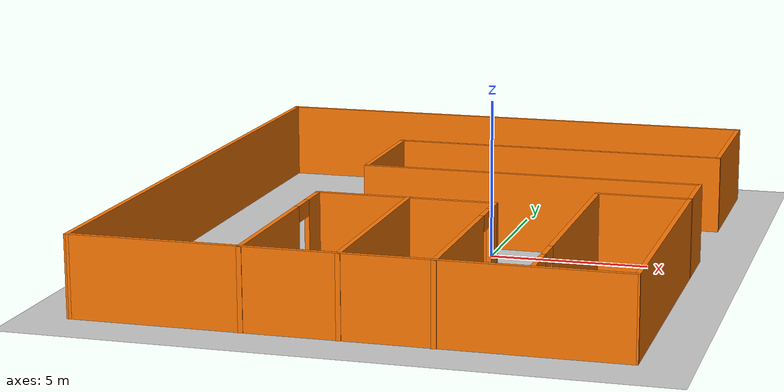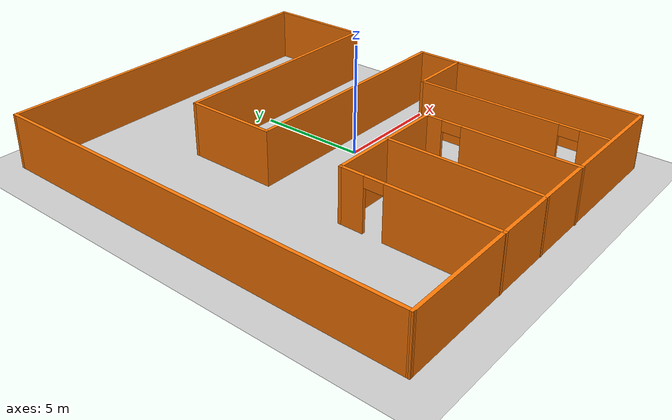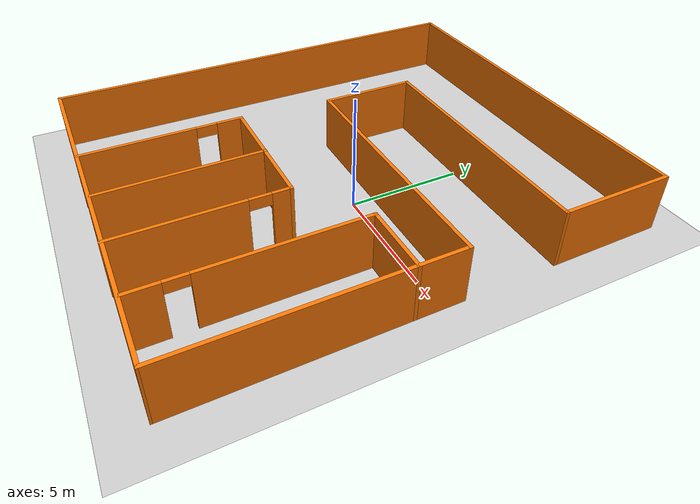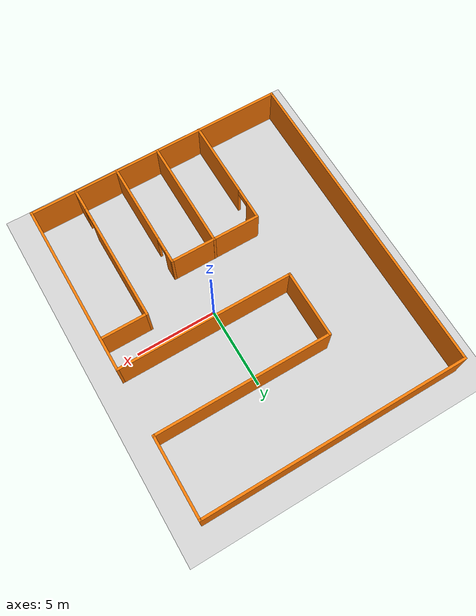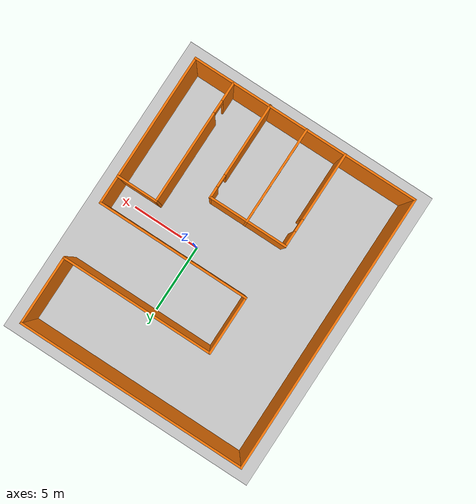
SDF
<sdf version="1.7">
 <world name="default">
  <light name="sun" type="directional">
   <pose>0 0 10 0 -0 0</pose>
   <diffuse>0.8 0.8 0.8 1</diffuse>
   <specular>0.2 0.2 0.2 1</specular>
   <attenuation>
    <range>1000</range>
    <constant>0.9</constant>
    <linear>0.01</linear>
    <quadratic>0.001</quadratic>
   </attenuation>
   <direction>-0.5 0.1 -0.9</direction>
   <spot><inner_angle>0</inner_angle><outer_angle>0</outer_angle><falloff>0</falloff></spot>
  </light>
  <model name="ground_plane">
   <static>1</static>
   <link name="link">
    <collision name="collision">
     <geometry><plane><normal>0 0 1</normal><size>100 100</size></plane></geometry>
     <surface><friction><ode><mu>100</mu><mu2>50</mu2></ode></friction></surface>
    </collision>
    <visual name="visual">
     <cast_shadows>0</cast_shadows>
     <geometry><plane><normal>0 0 1</normal><size>100 100</size></plane></geometry>
     <material>
      <script><uri>file://media/materials/scripts/gazebo.material</uri><name>Gazebo/Grey</name></script>
     </material>
    </visual>
   </link>
  </model>
  <gravity>0 0 -9.8</gravity>
  <magnetic_field>6e-06 2.3e-05 -4.2e-05</magnetic_field>
  <atmosphere type="adiabatic"/>
  <physics type="ode">
   <max_step_size>0.001</max_step_size>
   <real_time_factor>1</real_time_factor>
   <real_time_update_rate>1000</real_time_update_rate>
  </physics>
  <scene><ambient>0.4 0.4 0.4 1</ambient><background>0.7 0.7 0.7 1</background><shadows>1</shadows></scene>
  <audio><device>default</device></audio>
  <spherical_coordinates>
   <surface_model>EARTH_WGS84</surface_model>
   <latitude_deg>0</latitude_deg>
   <longitude_deg>0</longitude_deg>
   <elevation>0</elevation>
   <heading_deg>0</heading_deg>
  </spherical_coordinates>
  <model name="btu">
   <pose>-1.75357 0.012326 0 0 -0 0</pose>
   <link name="Wall_0">
    <collision name="Wall_0_Collision">
     <geometry><box><size>20 0.15 2.5</size></box></geometry>
     <pose>0 0 1.25 0 -0 0</pose>
    </collision>
    <visual name="Wall_0_Visual">
     <pose>0 0 1.25 0 -0 0</pose>
     <geometry><box><size>20 0.15 2.5</size></box></geometry>
     <material>
      <script><uri>file://media/materials/scripts/gazebo.material</uri><name>Gazebo/Grey</name></script>
      <ambient>0.996078 0.47451 0.0196078 1</ambient>
     </material>
     <meta><layer>0</layer></meta>
    </visual>
    <pose>-8.17508 0.000617 0 0 -0 -1.5708</pose>
   </link>
   <link name="Wall_11">
    <pose>2.61895 -6.50062 0 0 -0 1.5708</pose>
    <visual name="Wall_11_Visual_0">
     <pose>-0.874038 0 1.25 0 -0 0</pose>
     <geometry><box><size>5.25192 0.15 2.5</size></box></geometry>
     <material>
      <script><uri>file://media/materials/scripts/gazebo.material</uri><name>Gazebo/Grey</name></script>
      <ambient>0.996078 0.47451 0.0196078 1</ambient>
     </material>
     <meta><layer>0</layer></meta>
    </visual>
    <collision name="Wall_11_Collision_0">
     <geometry><box><size>5.25192 0.15 2.5</size></box></geometry>
     <pose>-0.874038 0 1.25 0 -0 0</pose>
    </collision>
    <visual name="Wall_11_Visual_1">
     <pose>3.07596 0 1.25 0 -0 0</pose>
     <geometry><box><size>0.848076 0.15 2.5</size></box></geometry>
     <material>
      <script><uri>file://media/materials/scripts/gazebo.material</uri><name>Gazebo/Grey</name></script>
      <ambient>0.996078 0.47451 0.0196078 1</ambient>
     </material>
     <meta><layer>0</layer></meta>
    </visual>
    <collision name="Wall_11_Collision_1">
     <geometry><box><size>0.848076 0.15 2.5</size></box></geometry>
     <pose>3.07596 0 1.25 0 -0 0</pose>
    </collision>
    <visual name="Wall_11_Visual_2">
     <pose>2.20192 0 2.25 0 -0 0</pose>
     <geometry><box><size>0.9 0.15 0.5</size></box></geometry>
     <material>
      <script><uri>file://media/materials/scripts/gazebo.material</uri><name>Gazebo/Grey</name></script>
      <ambient>0.996078 0.47451 0.0196078 1</ambient>
     </material>
     <meta><layer>0</layer></meta>
    </visual>
    <collision name="Wall_11_Collision_2">
     <geometry><box><size>0.9 0.15 0.5</size></box></geometry>
     <pose>2.20192 0 2.25 0 -0 0</pose>
    </collision>
   </link>
   <link name="Wall_12">
    <collision name="Wall_12_Collision">
     <geometry><box><size>5.75 0.15 2.5</size></box></geometry>
     <pose>0 0 1.25 0 -0 0</pose>
    </collision>
    <visual name="Wall_12_Visual">
     <pose>0 0 1.25 0 -0 0</pose>
     <geometry><box><size>5.75 0.15 2.5</size></box></geometry>
     <material>
      <script><uri>file://media/materials/scripts/gazebo.material</uri><name>Gazebo/Grey</name></script>
      <ambient>0.996078 0.47451 0.0196078 1</ambient>
     </material>
     <meta><layer>0</layer></meta>
    </visual>
    <pose>-0.181051 -3.07562 0 0 -0 3.14159</pose>
   </link>
   <link name="Wall_13">
    <pose>-2.98105 -6.50062 0 0 -0 -1.5708</pose>
    <visual name="Wall_13_Visual_0">
     <pose>-2.91353 0 1.25 0 -0 0</pose>
     <geometry><box><size>1.17293 0.15 2.5</size></box></geometry>
     <material>
      <script><uri>file://media/materials/scripts/gazebo.material</uri><name>Gazebo/Grey</name></script>
      <ambient>0.996078 0.47451 0.0196078 1</ambient>
     </material>
     <meta><layer>0</layer></meta>
    </visual>
    <collision name="Wall_13_Collision_0">
     <geometry><box><size>1.17293 0.15 2.5</size></box></geometry>
     <pose>-2.91353 0 1.25 0 -0 0</pose>
    </collision>
    <visual name="Wall_13_Visual_1">
     <pose>1.03647 0 1.25 0 -0 0</pose>
     <geometry><box><size>4.92707 0.15 2.5</size></box></geometry>
     <material>
      <script><uri>file://media/materials/scripts/gazebo.material</uri><name>Gazebo/Grey</name></script>
      <ambient>0.996078 0.47451 0.0196078 1</ambient>
     </material>
     <meta><layer>0</layer></meta>
    </visual>
    <collision name="Wall_13_Collision_1">
     <geometry><box><size>4.92707 0.15 2.5</size></box></geometry>
     <pose>1.03647 0 1.25 0 -0 0</pose>
    </collision>
    <visual name="Wall_13_Visual_2">
     <pose>-1.87707 0 2.25 0 -0 0</pose>
     <geometry><box><size>0.9 0.15 0.5</size></box></geometry>
     <material>
      <script><uri>file://media/materials/scripts/gazebo.material</uri><name>Gazebo/Grey</name></script>
      <ambient>0.996078 0.47451 0.0196078 1</ambient>
     </material>
     <meta><layer>0</layer></meta>
    </visual>
    <collision name="Wall_13_Collision_2">
     <geometry><box><size>0.9 0.15 0.5</size></box></geometry>
     <pose>-1.87707 0 2.25 0 -0 0</pose>
    </collision>
   </link>
   <link name="Wall_15">
    <collision name="Wall_15_Collision">
     <geometry><box><size>7 0.15 2.5</size></box></geometry>
     <pose>0 0 1.25 0 -0 0</pose>
    </collision>
    <visual name="Wall_15_Visual">
     <pose>0 0 1.25 0 -0 0</pose>
     <geometry><box><size>7 0.15 2.5</size></box></geometry>
     <material>
      <script><uri>file://media/materials/scripts/gazebo.material</uri><name>Gazebo/Grey</name></script>
      <ambient>0.996078 0.47451 0.0196078 1</ambient>
     </material>
     <meta><layer>0</layer></meta>
    </visual>
    <pose>-0.109906 -6.48906 0 0 -0 1.5708</pose>
   </link>
   <link name="Wall_17">
    <collision name="Wall_17_Collision">
     <geometry><box><size>3 0.15 2.5</size></box></geometry>
     <pose>0 0 1.25 0 -0 0</pose>
    </collision>
    <visual name="Wall_17_Visual">
     <pose>0 0 1.25 0 -0 0</pose>
     <geometry><box><size>3 0.15 2.5</size></box></geometry>
     <material>
      <script><uri>file://media/materials/scripts/gazebo.material</uri><name>Gazebo/Grey</name></script>
      <ambient>0.996078 0.47451 0.0196078 1</ambient>
     </material>
     <meta><layer>0</layer></meta>
    </visual>
    <pose>6.75032 -1.01411 0 0 -0 3.14159</pose>
   </link>
   <link name="Wall_18">
    <pose>5.32532 -5.43911 0 0 -0 -1.5708</pose>
    <visual name="Wall_18_Visual_0">
     <pose>-1.144 0 1.25 0 -0 0</pose>
     <geometry><box><size>6.71201 0.15 2.5</size></box></geometry>
     <material>
      <script><uri>file://media/materials/scripts/gazebo.material</uri><name>Gazebo/Grey</name></script>
      <ambient>0.996078 0.47451 0.0196078 1</ambient>
     </material>
     <meta><layer>0</layer></meta>
    </visual>
    <collision name="Wall_18_Collision_0">
     <geometry><box><size>6.71201 0.15 2.5</size></box></geometry>
     <pose>-1.144 0 1.25 0 -0 0</pose>
    </collision>
    <visual name="Wall_18_Visual_1">
     <pose>3.806 0 1.25 0 -0 0</pose>
     <geometry><box><size>1.38799 0.15 2.5</size></box></geometry>
     <material>
      <script><uri>file://media/materials/scripts/gazebo.material</uri><name>Gazebo/Grey</name></script>
      <ambient>0.996078 0.47451 0.0196078 1</ambient>
     </material>
     <meta><layer>0</layer></meta>
    </visual>
    <collision name="Wall_18_Collision_1">
     <geometry><box><size>1.38799 0.15 2.5</size></box></geometry>
     <pose>3.806 0 1.25 0 -0 0</pose>
    </collision>
    <visual name="Wall_18_Visual_2">
     <pose>2.66201 0 2.25 0 -0 0</pose>
     <geometry><box><size>0.9 0.15 0.5</size></box></geometry>
     <material>
      <script><uri>file://media/materials/scripts/gazebo.material</uri><name>Gazebo/Grey</name></script>
      <ambient>0.996078 0.47451 0.0196078 1</ambient>
     </material>
     <meta><layer>0</layer></meta>
    </visual>
    <collision name="Wall_18_Collision_2">
     <geometry><box><size>0.9 0.15 0.5</size></box></geometry>
     <pose>2.66201 0 2.25 0 -0 0</pose>
    </collision>
   </link>
   <link name="Wall_2">
    <collision name="Wall_2_Collision">
     <geometry><box><size>16.5 0.15 2.5</size></box></geometry>
     <pose>0 0 1.25 0 -0 0</pose>
    </collision>
    <visual name="Wall_2_Visual">
     <pose>0 0 1.25 0 -0 0</pose>
     <geometry><box><size>16.5 0.15 2.5</size></box></geometry>
     <material>
      <script><uri>file://media/materials/scripts/gazebo.material</uri><name>Gazebo/Grey</name></script>
      <ambient>0.996078 0.47451 0.0196078 1</ambient>
     </material>
     <meta><layer>0</layer></meta>
    </visual>
    <pose>-8.4e-05 9.92562 0 0 -0 0</pose>
   </link>
   <link name="Wall_4">
    <collision name="Wall_4_Collision">
     <geometry><box><size>5 0.15 2.5</size></box></geometry>
     <pose>0 0 1.25 0 -0 0</pose>
    </collision>
    <visual name="Wall_4_Visual">
     <pose>0 0 1.25 0 -0 0</pose>
     <geometry><box><size>5 0.15 2.5</size></box></geometry>
     <material>
      <script><uri>file://media/materials/scripts/gazebo.material</uri><name>Gazebo/Grey</name></script>
      <ambient>0.996078 0.47451 0.0196078 1</ambient>
     </material>
     <meta><layer>0</layer></meta>
    </visual>
    <pose>8.17492 7.50062 0 0 -0 -1.5708</pose>
   </link>
   <link name="Wall_5">
    <collision name="Wall_5_Collision">
     <geometry><box><size>11 0.15 2.5</size></box></geometry>
     <pose>0 0 1.25 0 -0 0</pose>
    </collision>
    <visual name="Wall_5_Visual">
     <pose>0 0 1.25 0 -0 0</pose>
     <geometry><box><size>11 0.15 2.5</size></box></geometry>
     <material>
      <script><uri>file://media/materials/scripts/gazebo.material</uri><name>Gazebo/Grey</name></script>
      <ambient>0.996078 0.47451 0.0196078 1</ambient>
     </material>
     <meta><layer>0</layer></meta>
    </visual>
    <pose>2.74992 5.07562 0 0 -0 3.14159</pose>
   </link>
   <link name="Wall_6">
    <collision name="Wall_6_Collision">
     <geometry><box><size>4.25 0.15 2.5</size></box></geometry>
     <pose>0 0 1.25 0 -0 0</pose>
    </collision>
    <visual name="Wall_6_Visual">
     <pose>0 0 1.25 0 -0 0</pose>
     <geometry><box><size>4.25 0.15 2.5</size></box></geometry>
     <material>
      <script><uri>file://media/materials/scripts/gazebo.material</uri><name>Gazebo/Grey</name></script>
      <ambient>0.996078 0.47451 0.0196078 1</ambient>
     </material>
     <meta><layer>0</layer></meta>
    </visual>
    <pose>-2.67508 3.02562 0 0 -0 -1.5708</pose>
   </link>
   <link name="Wall_7">
    <collision name="Wall_7_Collision">
     <geometry><box><size>11 0.15 2.5</size></box></geometry>
     <pose>0 0 1.25 0 -0 0</pose>
    </collision>
    <visual name="Wall_7_Visual">
     <pose>0 0 1.25 0 -0 0</pose>
     <geometry><box><size>11 0.15 2.5</size></box></geometry>
     <material>
      <script><uri>file://media/materials/scripts/gazebo.material</uri><name>Gazebo/Grey</name></script>
      <ambient>0.996078 0.47451 0.0196078 1</ambient>
     </material>
     <meta><layer>0</layer></meta>
    </visual>
    <pose>2.74992 0.975617 0 0 -0 0</pose>
   </link>
   <link name="Wall_8">
    <collision name="Wall_8_Collision">
     <geometry><box><size>11 0.15 2.5</size></box></geometry>
     <pose>0 0 1.25 0 -0 0</pose>
    </collision>
    <visual name="Wall_8_Visual">
     <pose>0 0 1.25 0 -0 0</pose>
     <geometry><box><size>11 0.15 2.5</size></box></geometry>
     <material>
      <script><uri>file://media/materials/scripts/gazebo.material</uri><name>Gazebo/Grey</name></script>
      <ambient>0.996078 0.47451 0.0196078 1</ambient>
     </material>
     <meta><layer>0</layer></meta>
    </visual>
    <pose>8.17492 -4.44938 0 0 -0 -1.5708</pose>
   </link>
   <link name="Wall_9">
    <collision name="Wall_9_Collision">
     <geometry><box><size>16.5001 0.15 2.5</size></box></geometry>
     <pose>0 0 1.25 0 -0 0</pose>
    </collision>
    <visual name="Wall_9_Visual">
     <pose>0 0 1.25 0 -0 0</pose>
     <geometry><box><size>16.5001 0.15 2.5</size></box></geometry>
     <material>
      <script><uri>file://media/materials/scripts/gazebo.material</uri><name>Gazebo/Grey</name></script>
      <ambient>0.996078 0.47451 0.0196078 1</ambient>
     </material>
     <meta><layer>0</layer></meta>
    </visual>
    <pose>-8.4e-05 -9.89938 0 0 -0 -3.13854</pose>
   </link>
   <static>1</static>
  </model>
 </world>
</sdf>
